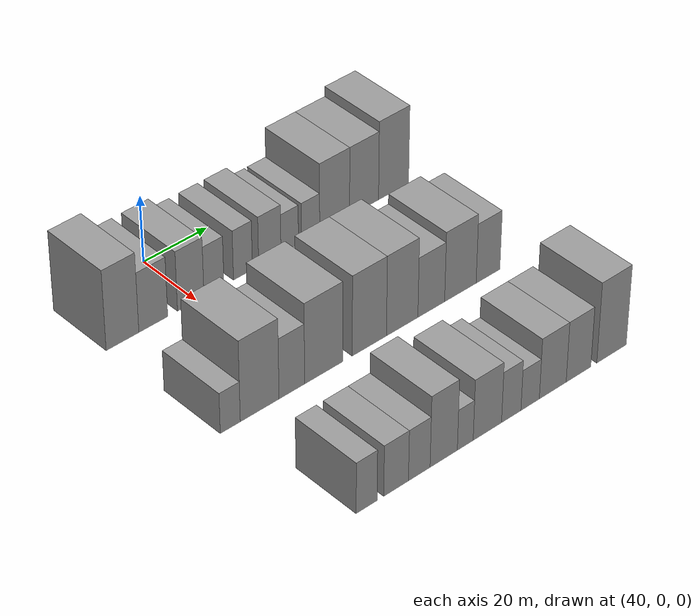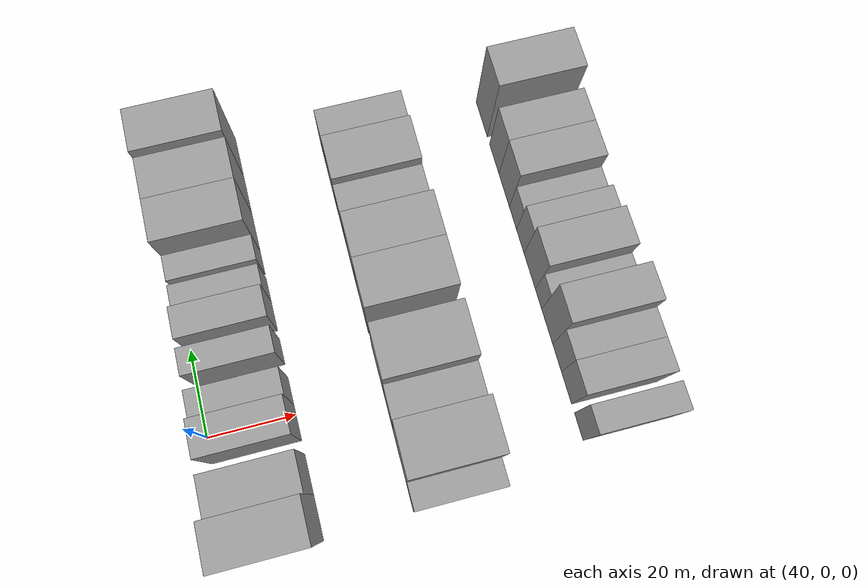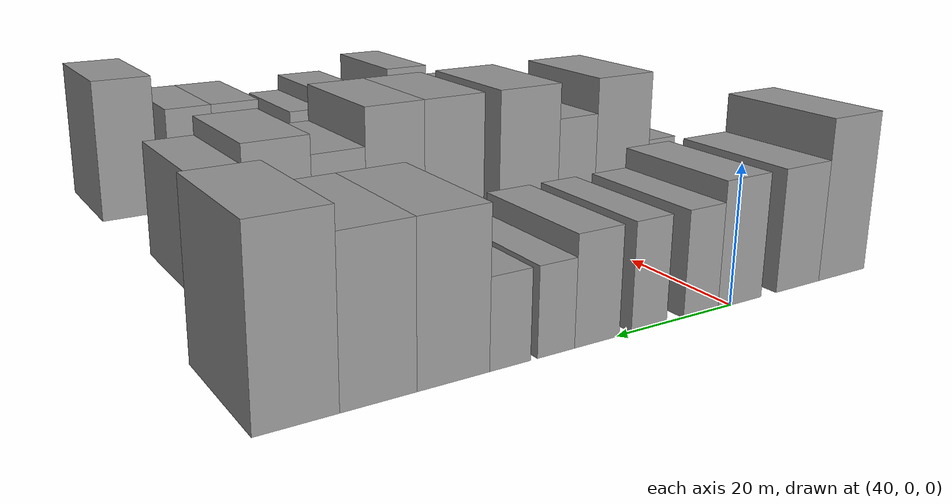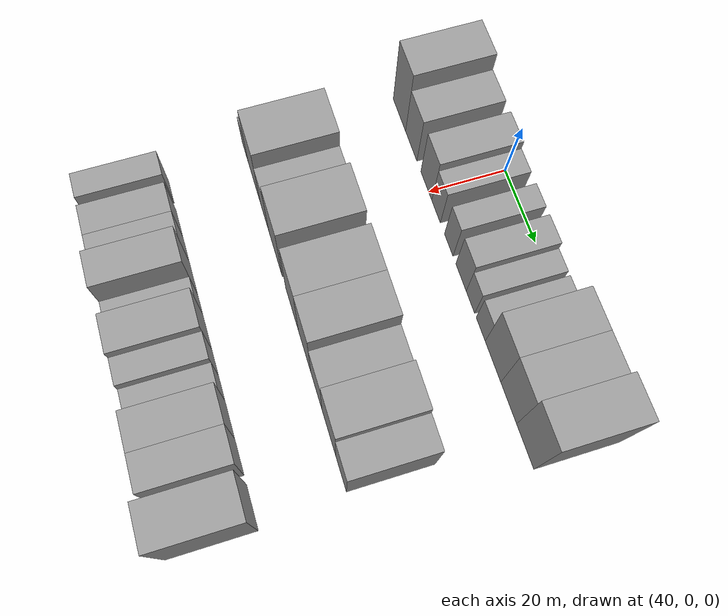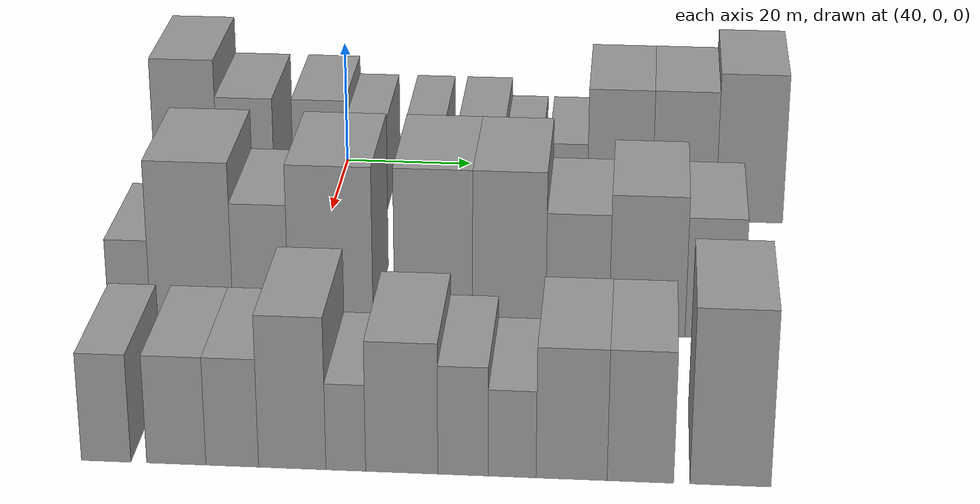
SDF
<sdf version="1.6">
 <world name="default">
  <model name="building_38">
   <static>1</static>
   <pose>50.0000 -22.6203 0 0.000000 0.000000 0.000000</pose>
   <link name="link">
    <pose>0 0 12.00 0 0 0</pose>
    <collision name="collision"><geometry><box><size>20.0000 9.8466 24.0000</size></box></geometry></collision>
    <visual name="visual">
     <cast_shadows>0</cast_shadows>
     <geometry><box><size>20.0000 9.8466 24.0000</size></box></geometry>
     <material>
      <script>
       <uri>model://grey_wall/materials/scripts</uri>
       <uri>model://grey_wall/materials/textures</uri>
       <name>vrc/grey_wall</name>
      </script>
     </material>
    </visual>
   </link>
  </model>
  <model name="building_39">
   <static>1</static>
   <pose>50.0000 -13.2915 0 0.000000 0.000000 0.000000</pose>
   <link name="link">
    <pose>0 0 9.00 0 0 0</pose>
    <collision name="collision"><geometry><box><size>20.0000 8.8109 18.0000</size></box></geometry></collision>
    <visual name="visual">
     <cast_shadows>0</cast_shadows>
     <geometry><box><size>20.0000 8.8109 18.0000</size></box></geometry>
     <material>
      <script>
       <uri>model://grey_wall/materials/scripts</uri>
       <uri>model://grey_wall/materials/textures</uri>
       <name>vrc/grey_wall</name>
      </script>
     </material>
    </visual>
   </link>
  </model>
  <model name="building_40">
   <static>1</static>
   <pose>50.0000 -1.7778 0 0.000000 0.000000 0.000000</pose>
   <link name="link">
    <pose>0 0 9.00 0 0 0</pose>
    <collision name="collision"><geometry><box><size>20.0000 8.2166 18.0000</size></box></geometry></collision>
    <visual name="visual">
     <cast_shadows>0</cast_shadows>
     <geometry><box><size>20.0000 8.2166 18.0000</size></box></geometry>
     <material>
      <script>
       <uri>model://grey_wall/materials/scripts</uri>
       <uri>model://grey_wall/materials/textures</uri>
       <name>vrc/grey_wall</name>
      </script>
     </material>
    </visual>
   </link>
  </model>
  <model name="building_41">
   <static>1</static>
   <pose>50.0000 5.4653 0 0.000000 0.000000 0.000000</pose>
   <link name="link">
    <pose>0 0 7.50 0 0 0</pose>
    <collision name="collision"><geometry><box><size>20.0000 6.2696 15.0000</size></box></geometry></collision>
    <visual name="visual">
     <cast_shadows>0</cast_shadows>
     <geometry><box><size>20.0000 6.2696 15.0000</size></box></geometry>
     <material>
      <script>
       <uri>model://grey_wall/materials/scripts</uri>
       <uri>model://grey_wall/materials/textures</uri>
       <name>vrc/grey_wall</name>
      </script>
     </material>
    </visual>
   </link>
  </model>
  <model name="building_42">
   <static>1</static>
   <pose>50.0000 14.6106 0 0.000000 0.000000 0.000000</pose>
   <link name="link">
    <pose>0 0 7.50 0 0 0</pose>
    <collision name="collision"><geometry><box><size>20.0000 6.0210 15.0000</size></box></geometry></collision>
    <visual name="visual">
     <cast_shadows>0</cast_shadows>
     <geometry><box><size>20.0000 6.0210 15.0000</size></box></geometry>
     <material>
      <script>
       <uri>model://grey_wall/materials/scripts</uri>
       <uri>model://grey_wall/materials/textures</uri>
       <name>vrc/grey_wall</name>
      </script>
     </material>
    </visual>
   </link>
  </model>
  <model name="building_43">
   <static>1</static>
   <pose>50.0000 23.2075 0 0.000000 0.000000 0.000000</pose>
   <link name="link">
    <pose>0 0 7.50 0 0 0</pose>
    <collision name="collision"><geometry><box><size>20.0000 7.1727 15.0000</size></box></geometry></collision>
    <visual name="visual">
     <cast_shadows>0</cast_shadows>
     <geometry><box><size>20.0000 7.1727 15.0000</size></box></geometry>
     <material>
      <script>
       <uri>model://grey_wall/materials/scripts</uri>
       <uri>model://grey_wall/materials/textures</uri>
       <name>vrc/grey_wall</name>
      </script>
     </material>
    </visual>
   </link>
  </model>
  <model name="building_44">
   <static>1</static>
   <pose>50.0000 29.6395 0 0.000000 0.000000 0.000000</pose>
   <link name="link">
    <pose>0 0 6.00 0 0 0</pose>
    <collision name="collision"><geometry><box><size>20.0000 5.6913 12.0000</size></box></geometry></collision>
    <visual name="visual">
     <cast_shadows>0</cast_shadows>
     <geometry><box><size>20.0000 5.6913 12.0000</size></box></geometry>
     <material>
      <script>
       <uri>model://grey_wall/materials/scripts</uri>
       <uri>model://grey_wall/materials/textures</uri>
       <name>vrc/grey_wall</name>
      </script>
     </material>
    </visual>
   </link>
  </model>
  <model name="building_45">
   <static>1</static>
   <pose>50.0000 36.4650 0 0.000000 0.000000 0.000000</pose>
   <link name="link">
    <pose>0 0 6.00 0 0 0</pose>
    <collision name="collision"><geometry><box><size>20.0000 5.9598 12.0000</size></box></geometry></collision>
    <visual name="visual">
     <cast_shadows>0</cast_shadows>
     <geometry><box><size>20.0000 5.9598 12.0000</size></box></geometry>
     <material>
      <script>
       <uri>model://grey_wall/materials/scripts</uri>
       <uri>model://grey_wall/materials/textures</uri>
       <name>vrc/grey_wall</name>
      </script>
     </material>
    </visual>
   </link>
  </model>
  <model name="building_46">
   <static>1</static>
   <pose>50.0000 44.4060 0 0.000000 0.000000 0.000000</pose>
   <link name="link">
    <pose>0 0 10.50 0 0 0</pose>
    <collision name="collision"><geometry><box><size>20.0000 9.9222 21.0000</size></box></geometry></collision>
    <visual name="visual">
     <cast_shadows>0</cast_shadows>
     <geometry><box><size>20.0000 9.9222 21.0000</size></box></geometry>
     <material>
      <script>
       <uri>model://grey_wall/materials/scripts</uri>
       <uri>model://grey_wall/materials/textures</uri>
       <name>vrc/grey_wall</name>
      </script>
     </material>
    </visual>
   </link>
  </model>
  <model name="building_47">
   <static>1</static>
   <pose>50.0000 54.2389 0 0.000000 0.000000 0.000000</pose>
   <link name="link">
    <pose>0 0 10.50 0 0 0</pose>
    <collision name="collision"><geometry><box><size>20.0000 9.7437 21.0000</size></box></geometry></collision>
    <visual name="visual">
     <cast_shadows>0</cast_shadows>
     <geometry><box><size>20.0000 9.7437 21.0000</size></box></geometry>
     <material>
      <script>
       <uri>model://grey_wall/materials/scripts</uri>
       <uri>model://grey_wall/materials/textures</uri>
       <name>vrc/grey_wall</name>
      </script>
     </material>
    </visual>
   </link>
  </model>
  <model name="building_48">
   <static>1</static>
   <pose>50.0000 64.2303 0 0.000000 0.000000 0.000000</pose>
   <link name="link">
    <pose>0 0 12.00 0 0 0</pose>
    <collision name="collision"><geometry><box><size>20.0000 10.2391 24.0000</size></box></geometry></collision>
    <visual name="visual">
     <cast_shadows>0</cast_shadows>
     <geometry><box><size>20.0000 10.2391 24.0000</size></box></geometry>
     <material>
      <script>
       <uri>model://grey_wall/materials/scripts</uri>
       <uri>model://grey_wall/materials/textures</uri>
       <name>vrc/grey_wall</name>
      </script>
     </material>
    </visual>
   </link>
  </model>
  <model name="building_126">
   <static>1</static>
   <pose>90.0000 -23.4608 0 0.000000 0.000000 0.000000</pose>
   <link name="link">
    <pose>0 0 6.00 0 0 0</pose>
    <collision name="collision"><geometry><box><size>20.0000 5.9614 12.0000</size></box></geometry></collision>
    <visual name="visual">
     <cast_shadows>0</cast_shadows>
     <geometry><box><size>20.0000 5.9614 12.0000</size></box></geometry>
     <material>
      <script>
       <uri>model://grey_wall/materials/scripts</uri>
       <uri>model://grey_wall/materials/textures</uri>
       <name>vrc/grey_wall</name>
      </script>
     </material>
    </visual>
   </link>
  </model>
  <model name="building_127">
   <static>1</static>
   <pose>90.0000 -14.6284 0 0.000000 0.000000 0.000000</pose>
   <link name="link">
    <pose>0 0 12.00 0 0 0</pose>
    <collision name="collision"><geometry><box><size>20.0000 11.7034 24.0000</size></box></geometry></collision>
    <visual name="visual">
     <cast_shadows>0</cast_shadows>
     <geometry><box><size>20.0000 11.7034 24.0000</size></box></geometry>
     <material>
      <script>
       <uri>model://grey_wall/materials/scripts</uri>
       <uri>model://grey_wall/materials/textures</uri>
       <name>vrc/grey_wall</name>
      </script>
     </material>
    </visual>
   </link>
  </model>
  <model name="building_128">
   <static>1</static>
   <pose>90.0000 -4.8487 0 0.000000 0.000000 0.000000</pose>
   <link name="link">
    <pose>0 0 9.00 0 0 0</pose>
    <collision name="collision"><geometry><box><size>20.0000 7.8560 18.0000</size></box></geometry></collision>
    <visual name="visual">
     <cast_shadows>0</cast_shadows>
     <geometry><box><size>20.0000 7.8560 18.0000</size></box></geometry>
     <material>
      <script>
       <uri>model://grey_wall/materials/scripts</uri>
       <uri>model://grey_wall/materials/textures</uri>
       <name>vrc/grey_wall</name>
      </script>
     </material>
    </visual>
   </link>
  </model>
  <model name="building_129">
   <static>1</static>
   <pose>90.0000 4.9935 0 0.000000 0.000000 0.000000</pose>
   <link name="link">
    <pose>0 0 12.00 0 0 0</pose>
    <collision name="collision"><geometry><box><size>20.0000 11.8285 24.0000</size></box></geometry></collision>
    <visual name="visual">
     <cast_shadows>0</cast_shadows>
     <geometry><box><size>20.0000 11.8285 24.0000</size></box></geometry>
     <material>
      <script>
       <uri>model://grey_wall/materials/scripts</uri>
       <uri>model://grey_wall/materials/textures</uri>
       <name>vrc/grey_wall</name>
      </script>
     </material>
    </visual>
   </link>
  </model>
  <model name="building_130">
   <static>1</static>
   <pose>90.0000 19.3446 0 0.000000 0.000000 0.000000</pose>
   <link name="link">
    <pose>0 0 12.00 0 0 0</pose>
    <collision name="collision"><geometry><box><size>20.0000 10.8736 24.0000</size></box></geometry></collision>
    <visual name="visual">
     <cast_shadows>0</cast_shadows>
     <geometry><box><size>20.0000 10.8736 24.0000</size></box></geometry>
     <material>
      <script>
       <uri>model://grey_wall/materials/scripts</uri>
       <uri>model://grey_wall/materials/textures</uri>
       <name>vrc/grey_wall</name>
      </script>
     </material>
    </visual>
   </link>
  </model>
  <model name="building_131">
   <static>1</static>
   <pose>90.0000 29.8597 0 0.000000 0.000000 0.000000</pose>
   <link name="link">
    <pose>0 0 12.00 0 0 0</pose>
    <collision name="collision"><geometry><box><size>20.0000 10.1567 24.0000</size></box></geometry></collision>
    <visual name="visual">
     <cast_shadows>0</cast_shadows>
     <geometry><box><size>20.0000 10.1567 24.0000</size></box></geometry>
     <material>
      <script>
       <uri>model://grey_wall/materials/scripts</uri>
       <uri>model://grey_wall/materials/textures</uri>
       <name>vrc/grey_wall</name>
      </script>
     </material>
    </visual>
   </link>
  </model>
  <model name="building_132">
   <static>1</static>
   <pose>90.0000 39.3220 0 0.000000 0.000000 0.000000</pose>
   <link name="link">
    <pose>0 0 9.00 0 0 0</pose>
    <collision name="collision"><geometry><box><size>20.0000 8.7679 18.0000</size></box></geometry></collision>
    <visual name="visual">
     <cast_shadows>0</cast_shadows>
     <geometry><box><size>20.0000 8.7679 18.0000</size></box></geometry>
     <material>
      <script>
       <uri>model://grey_wall/materials/scripts</uri>
       <uri>model://grey_wall/materials/textures</uri>
       <name>vrc/grey_wall</name>
      </script>
     </material>
    </visual>
   </link>
  </model>
  <model name="building_133">
   <static>1</static>
   <pose>90.0000 48.9421 0 0.000000 0.000000 0.000000</pose>
   <link name="link">
    <pose>0 0 10.50 0 0 0</pose>
    <collision name="collision"><geometry><box><size>20.0000 10.4723 21.0000</size></box></geometry></collision>
    <visual name="visual">
     <cast_shadows>0</cast_shadows>
     <geometry><box><size>20.0000 10.4723 21.0000</size></box></geometry>
     <material>
      <script>
       <uri>model://grey_wall/materials/scripts</uri>
       <uri>model://grey_wall/materials/textures</uri>
       <name>vrc/grey_wall</name>
      </script>
     </material>
    </visual>
   </link>
  </model>
  <model name="building_134">
   <static>1</static>
   <pose>90.0000 58.1688 0 0.000000 0.000000 0.000000</pose>
   <link name="link">
    <pose>0 0 9.00 0 0 0</pose>
    <collision name="collision"><geometry><box><size>20.0000 7.9811 18.0000</size></box></geometry></collision>
    <visual name="visual">
     <cast_shadows>0</cast_shadows>
     <geometry><box><size>20.0000 7.9811 18.0000</size></box></geometry>
     <material>
      <script>
       <uri>model://grey_wall/materials/scripts</uri>
       <uri>model://grey_wall/materials/textures</uri>
       <name>vrc/grey_wall</name>
      </script>
     </material>
    </visual>
   </link>
  </model>
  <model name="building_213">
   <static>1</static>
   <pose>130.0000 -18.1410 0 0.000000 0.000000 0.000000</pose>
   <link name="link">
    <pose>0 0 7.50 0 0 0</pose>
    <collision name="collision"><geometry><box><size>20.0000 6.2490 15.0000</size></box></geometry></collision>
    <visual name="visual">
     <cast_shadows>0</cast_shadows>
     <geometry><box><size>20.0000 6.2490 15.0000</size></box></geometry>
     <material>
      <script>
       <uri>model://grey_wall/materials/scripts</uri>
       <uri>model://grey_wall/materials/textures</uri>
       <name>vrc/grey_wall</name>
      </script>
     </material>
    </visual>
   </link>
  </model>
  <model name="building_214">
   <static>1</static>
   <pose>130.0000 -9.2805 0 0.000000 0.000000 0.000000</pose>
   <link name="link">
    <pose>0 0 7.50 0 0 0</pose>
    <collision name="collision"><geometry><box><size>20.0000 7.4720 15.0000</size></box></geometry></collision>
    <visual name="visual">
     <cast_shadows>0</cast_shadows>
     <geometry><box><size>20.0000 7.4720 15.0000</size></box></geometry>
     <material>
      <script>
       <uri>model://grey_wall/materials/scripts</uri>
       <uri>model://grey_wall/materials/textures</uri>
       <name>vrc/grey_wall</name>
      </script>
     </material>
    </visual>
   </link>
  </model>
  <model name="building_215">
   <static>1</static>
   <pose>130.0000 -2.2367 0 0.000000 0.000000 0.000000</pose>
   <link name="link">
    <pose>0 0 7.50 0 0 0</pose>
    <collision name="collision"><geometry><box><size>20.0000 6.6157 15.0000</size></box></geometry></collision>
    <visual name="visual">
     <cast_shadows>0</cast_shadows>
     <geometry><box><size>20.0000 6.6157 15.0000</size></box></geometry>
     <material>
      <script>
       <uri>model://grey_wall/materials/scripts</uri>
       <uri>model://grey_wall/materials/textures</uri>
       <name>vrc/grey_wall</name>
      </script>
     </material>
    </visual>
   </link>
  </model>
  <model name="building_216">
   <static>1</static>
   <pose>130.0000 5.2896 0 0.000000 0.000000 0.000000</pose>
   <link name="link">
    <pose>0 0 10.50 0 0 0</pose>
    <collision name="collision"><geometry><box><size>20.0000 8.4369 21.0000</size></box></geometry></collision>
    <visual name="visual">
     <cast_shadows>0</cast_shadows>
     <geometry><box><size>20.0000 8.4369 21.0000</size></box></geometry>
     <material>
      <script>
       <uri>model://grey_wall/materials/scripts</uri>
       <uri>model://grey_wall/materials/textures</uri>
       <name>vrc/grey_wall</name>
      </script>
     </material>
    </visual>
   </link>
  </model>
  <model name="building_217">
   <static>1</static>
   <pose>130.0000 11.9843 0 0.000000 0.000000 0.000000</pose>
   <link name="link">
    <pose>0 0 6.00 0 0 0</pose>
    <collision name="collision"><geometry><box><size>20.0000 4.9525 12.0000</size></box></geometry></collision>
    <visual name="visual">
     <cast_shadows>0</cast_shadows>
     <geometry><box><size>20.0000 4.9525 12.0000</size></box></geometry>
     <material>
      <script>
       <uri>model://grey_wall/materials/scripts</uri>
       <uri>model://grey_wall/materials/textures</uri>
       <name>vrc/grey_wall</name>
      </script>
     </material>
    </visual>
   </link>
  </model>
  <model name="building_218">
   <static>1</static>
   <pose>130.0000 18.9444 0 0.000000 0.000000 0.000000</pose>
   <link name="link">
    <pose>0 0 9.00 0 0 0</pose>
    <collision name="collision"><geometry><box><size>20.0000 8.9676 18.0000</size></box></geometry></collision>
    <visual name="visual">
     <cast_shadows>0</cast_shadows>
     <geometry><box><size>20.0000 8.9676 18.0000</size></box></geometry>
     <material>
      <script>
       <uri>model://grey_wall/materials/scripts</uri>
       <uri>model://grey_wall/materials/textures</uri>
       <name>vrc/grey_wall</name>
      </script>
     </material>
    </visual>
   </link>
  </model>
  <model name="building_219">
   <static>1</static>
   <pose>130.0000 26.5376 0 0.000000 0.000000 0.000000</pose>
   <link name="link">
    <pose>0 0 7.50 0 0 0</pose>
    <collision name="collision"><geometry><box><size>20.0000 6.2189 15.0000</size></box></geometry></collision>
    <visual name="visual">
     <cast_shadows>0</cast_shadows>
     <geometry><box><size>20.0000 6.2189 15.0000</size></box></geometry>
     <material>
      <script>
       <uri>model://grey_wall/materials/scripts</uri>
       <uri>model://grey_wall/materials/textures</uri>
       <name>vrc/grey_wall</name>
      </script>
     </material>
    </visual>
   </link>
  </model>
  <model name="building_220">
   <static>1</static>
   <pose>130.0000 32.6141 0 0.000000 0.000000 0.000000</pose>
   <link name="link">
    <pose>0 0 6.00 0 0 0</pose>
    <collision name="collision"><geometry><box><size>20.0000 5.9340 12.0000</size></box></geometry></collision>
    <visual name="visual">
     <cast_shadows>0</cast_shadows>
     <geometry><box><size>20.0000 5.9340 12.0000</size></box></geometry>
     <material>
      <script>
       <uri>model://grey_wall/materials/scripts</uri>
       <uri>model://grey_wall/materials/textures</uri>
       <name>vrc/grey_wall</name>
      </script>
     </material>
    </visual>
   </link>
  </model>
  <model name="building_221">
   <static>1</static>
   <pose>130.0000 39.9615 0 0.000000 0.000000 0.000000</pose>
   <link name="link">
    <pose>0 0 9.00 0 0 0</pose>
    <collision name="collision"><geometry><box><size>20.0000 8.7608 18.0000</size></box></geometry></collision>
    <visual name="visual">
     <cast_shadows>0</cast_shadows>
     <geometry><box><size>20.0000 8.7608 18.0000</size></box></geometry>
     <material>
      <script>
       <uri>model://grey_wall/materials/scripts</uri>
       <uri>model://grey_wall/materials/textures</uri>
       <name>vrc/grey_wall</name>
      </script>
     </material>
    </visual>
   </link>
  </model>
  <model name="building_222">
   <static>1</static>
   <pose>130.0000 48.4207 0 0.000000 0.000000 0.000000</pose>
   <link name="link">
    <pose>0 0 9.00 0 0 0</pose>
    <collision name="collision"><geometry><box><size>20.0000 8.1576 18.0000</size></box></geometry></collision>
    <visual name="visual">
     <cast_shadows>0</cast_shadows>
     <geometry><box><size>20.0000 8.1576 18.0000</size></box></geometry>
     <material>
      <script>
       <uri>model://grey_wall/materials/scripts</uri>
       <uri>model://grey_wall/materials/textures</uri>
       <name>vrc/grey_wall</name>
      </script>
     </material>
    </visual>
   </link>
  </model>
  <model name="building_223">
   <static>1</static>
   <pose>130.0000 59.4424 0 0.000000 0.000000 0.000000</pose>
   <link name="link">
    <pose>0 0 12.00 0 0 0</pose>
    <collision name="collision"><geometry><box><size>20.0000 9.8858 24.0000</size></box></geometry></collision>
    <visual name="visual">
     <cast_shadows>0</cast_shadows>
     <geometry><box><size>20.0000 9.8858 24.0000</size></box></geometry>
     <material>
      <script>
       <uri>model://grey_wall/materials/scripts</uri>
       <uri>model://grey_wall/materials/textures</uri>
       <name>vrc/grey_wall</name>
      </script>
     </material>
    </visual>
   </link>
  </model>
 </world>
</sdf>
